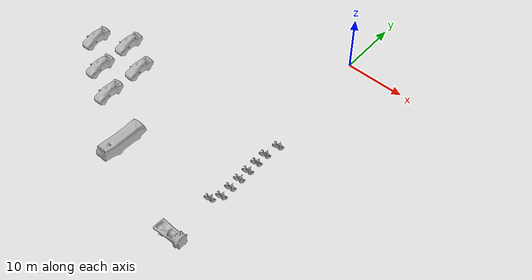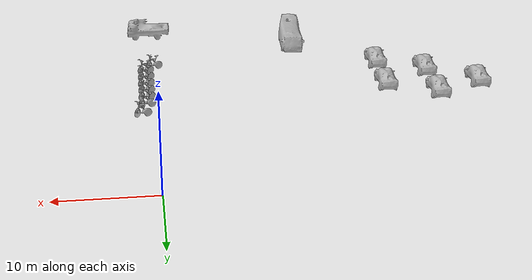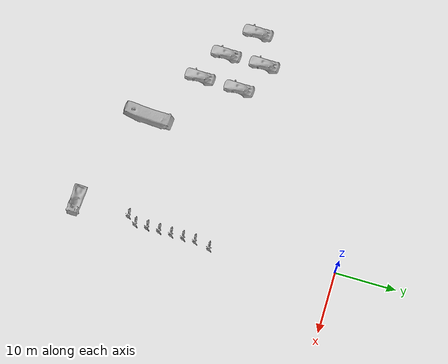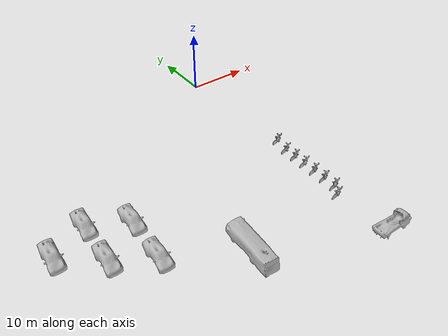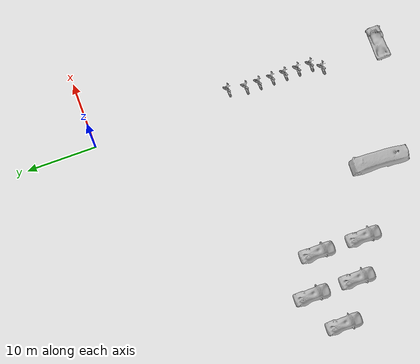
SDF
<sdf version="1.7">
 <world name="smoll_world">
  <model name="ground_plane">
   <static>1</static>
   <link name="link">
    <collision name="collision">
     <geometry><plane><normal>0 0 1</normal><size>100 100</size></plane></geometry>
     <surface><friction><ode><mu>100</mu><mu2>50</mu2></ode></friction></surface>
    </collision>
   </link>
  </model>
  <model name="kare-bus-2_clone_2">
   <model name="kare-bus">
    <static>1</static>
    <link name="link">
     <collision name="collision">
      <geometry><mesh><scale>8 8 8</scale><uri>model://kare-bus/meshes/kare-bus.obj</uri></mesh></geometry>
     </collision>
     <visual name="visual">
      <geometry><mesh><scale>8 8 8</scale><uri>model://kare-bus/meshes/kare-bus.obj</uri></mesh></geometry>
     </visual>
    </link>
    <pose>-3.3e-05 -0 -5e-06 1.57109 0.060055 1.57564</pose>
   </model>
   <static>0</static>
   <pose>-16 -36 2.05341 0 0 1.51931</pose>
  </model>
  <model name="kare-lorry3_clone_0">
   <model name="kare-lorry2">
    <model name="kare-emptylorry">
     <static>1</static>
     <link name="link">
      <collision name="collision">
       <geometry>
        <mesh>
         <scale>5 5 5</scale>
         <uri>/home/amadeus/model_editor_models/kare-emptylorry/meshes/kare-emptylorry.obj</uri>
        </mesh>
       </geometry>
      </collision>
      <visual name="visual">
       <geometry>
        <mesh>
         <scale>5 5 5</scale>
         <uri>/home/amadeus/model_editor_models/kare-emptylorry/meshes/kare-emptylorry.obj</uri>
        </mesh>
       </geometry>
      </visual>
     </link>
     <pose>-2.6e-05 -2.7e-05 -2e-06 1.55178 -0.050932 -1.58567</pose>
    </model>
    <static>0</static>
    <pose>2e-06 0 0.971266 0 -0 0</pose>
   </model>
   <static>1</static>
   <allow_auto_disable>0</allow_auto_disable>
   <plugin name="model_move" filename="/home/amadeus/Downloads/dev_ws/src/articubot_one/worlds/build/libmodel_move.so"/>
   <pose>0.478448 -43 0 0 0 0</pose>
  </model>
  <model name="kare-whitecar_clone_1">
   <static>1</static>
   <link name="roof_link">
    <pose>0 0 3 0 -0 0</pose>
    <self_collide>1</self_collide>
    <enable_wind>1</enable_wind>
    <kinematic>1</kinematic>
   </link>
   <link name="link">
    <collision name="collision">
     <geometry>
      <mesh>
       <scale>5 5 5</scale>
       <uri>/home/amadeus/model_editor_models/kare-whitecar/meshes/kare-whitecar.obj</uri>
      </mesh>
     </geometry>
    </collision>
    <visual name="visual">
     <geometry>
      <mesh>
       <scale>5 5 5</scale>
       <uri>/home/amadeus/model_editor_models/kare-whitecar/meshes/kare-whitecar.obj</uri>
      </mesh>
     </geometry>
    </visual>
   </link>
   <pose>-24.8609 -23.2845 1.09307 1.53975 -0 0</pose>
  </model>
  <model name="kare-whitecar_clone_2">
   <static>1</static>
   <link name="roof_link">
    <pose>0 0 3 0 -0 0</pose>
    <self_collide>1</self_collide>
    <enable_wind>1</enable_wind>
    <kinematic>1</kinematic>
   </link>
   <link name="link">
    <collision name="collision">
     <geometry>
      <mesh>
       <scale>5 5 5</scale>
       <uri>/home/amadeus/model_editor_models/kare-whitecar/meshes/kare-whitecar.obj</uri>
      </mesh>
     </geometry>
    </collision>
    <visual name="visual">
     <geometry>
      <mesh>
       <scale>5 5 5</scale>
       <uri>/home/amadeus/model_editor_models/kare-whitecar/meshes/kare-whitecar.obj</uri>
      </mesh>
     </geometry>
    </visual>
   </link>
   <pose>-25 -30 1.09307 1.53975 -0 0</pose>
  </model>
  <model name="kare-whitecar_clone_4">
   <static>1</static>
   <link name="roof_link">
    <pose>0 0 3 0 -0 0</pose>
    <self_collide>1</self_collide>
    <enable_wind>1</enable_wind>
    <kinematic>1</kinematic>
   </link>
   <link name="link">
    <collision name="collision">
     <geometry>
      <mesh>
       <scale>5 5 5</scale>
       <uri>/home/amadeus/model_editor_models/kare-whitecar/meshes/kare-whitecar.obj</uri>
      </mesh>
     </geometry>
    </collision>
    <visual name="visual">
     <geometry>
      <mesh>
       <scale>5 5 5</scale>
       <uri>/home/amadeus/model_editor_models/kare-whitecar/meshes/kare-whitecar.obj</uri>
      </mesh>
     </geometry>
    </visual>
   </link>
   <pose>-30 -20.4631 1.09307 1.53975 -0 0</pose>
  </model>
  <model name="kare-whitecar_clone_5">
   <static>1</static>
   <link name="roof_link">
    <pose>0 0 3 0 -0 0</pose>
    <self_collide>1</self_collide>
    <enable_wind>1</enable_wind>
    <kinematic>1</kinematic>
   </link>
   <link name="link">
    <collision name="collision">
     <geometry>
      <mesh>
       <scale>5 5 5</scale>
       <uri>/home/amadeus/model_editor_models/kare-whitecar/meshes/kare-whitecar.obj</uri>
      </mesh>
     </geometry>
    </collision>
    <visual name="visual">
     <geometry>
      <mesh>
       <scale>5 5 5</scale>
       <uri>/home/amadeus/model_editor_models/kare-whitecar/meshes/kare-whitecar.obj</uri>
      </mesh>
     </geometry>
    </visual>
   </link>
   <pose>-30 -27 1.09307 1.53975 -0 0</pose>
  </model>
  <model name="kare-whitecar_clone_7">
   <static>1</static>
   <link name="roof_link">
    <pose>0 0 3 0 -0 0</pose>
    <self_collide>1</self_collide>
    <enable_wind>1</enable_wind>
    <kinematic>1</kinematic>
   </link>
   <link name="link">
    <collision name="collision">
     <geometry>
      <mesh>
       <scale>5 5 5</scale>
       <uri>/home/amadeus/model_editor_models/kare-whitecar/meshes/kare-whitecar.obj</uri>
      </mesh>
     </geometry>
    </collision>
    <visual name="visual">
     <geometry>
      <mesh>
       <scale>5 5 5</scale>
       <uri>/home/amadeus/model_editor_models/kare-whitecar/meshes/kare-whitecar.obj</uri>
      </mesh>
     </geometry>
    </visual>
   </link>
   <pose>-35 -23 1.09307 1.53975 -0 0</pose>
  </model>
  <model name="kare-cycle2_clone_14">
   <model name="kare-cycle2">
    <model name="kare-cycle-2">
     <link name="link">
      <inertial>
       <mass>1</mass>
       <inertia><ixx>1</ixx><ixy>0</ixy><ixz>0</ixz><iyy>1</iyy><iyz>0</iyz><izz>1</izz></inertia>
      </inertial>
      <visual name="visual">
       <geometry><mesh><scale>2 2 2</scale><uri>model://kare-cycle/meshes/kare-cycle.obj</uri></mesh></geometry>
       <material><shader type="pixel"/></material>
      </visual>
      <collision name="collision">
       <geometry>
        <mesh><uri>/home/amadeus/model_editor_models/kare-cycle/meshes/kare-cycle.obj</uri><scale>2 2 2</scale></mesh>
       </geometry>
       <surface>
        <friction>
         <ode><mu>1</mu><mu2>1</mu2><fdir1>0 0 0</fdir1><slip1>0</slip1><slip2>0</slip2></ode>
         <torsional>
          <coefficient>1</coefficient>
          <patch_radius>0</patch_radius>
          <surface_radius>0</surface_radius>
          <use_patch_radius>1</use_patch_radius>
          <ode><slip>0</slip></ode>
         </torsional>
        </friction>
        <bounce><restitution_coefficient>0</restitution_coefficient><threshold>1e+06</threshold></bounce>
        <contact>
         <collide_without_contact>0</collide_without_contact>
         <collide_without_contact_bitmask>1</collide_without_contact_bitmask>
         <collide_bitmask>1</collide_bitmask>
         <ode>
          <soft_cfm>0</soft_cfm>
          <soft_erp>0.2</soft_erp>
          <kp>1e+13</kp>
          <kd>1</kd>
          <max_vel>0.01</max_vel>
          <min_depth>0</min_depth>
         </ode>
         <bullet>
          <split_impulse>1</split_impulse>
          <split_impulse_penetration_threshold>-0.01</split_impulse_penetration_threshold>
          <soft_cfm>0</soft_cfm>
          <soft_erp>0.2</soft_erp>
          <kp>1e+13</kp>
          <kd>1</kd>
         </bullet>
        </contact>
       </surface>
      </collision>
     </link>
     <static>1</static>
     <pose>4.5e-05 3e-06 6e-06 1.56443 -0.051805 1.69313</pose>
    </model>
    <static>0</static>
    <pose>9e-06 4e-06 -1e-06 0 -0 0</pose>
   </model>
   <static>0</static>
   <pose>1.49107 -20.4686 0 0 0 0</pose>
  </model>
  <model name="kare-cycle2_clone_15">
   <model name="kare-cycle2">
    <model name="kare-cycle-2">
     <link name="link">
      <inertial>
       <mass>1</mass>
       <inertia><ixx>1</ixx><ixy>0</ixy><ixz>0</ixz><iyy>1</iyy><iyz>0</iyz><izz>1</izz></inertia>
      </inertial>
      <visual name="visual">
       <geometry><mesh><scale>2 2 2</scale><uri>model://kare-cycle/meshes/kare-cycle.obj</uri></mesh></geometry>
       <material><shader type="pixel"/></material>
      </visual>
      <collision name="collision">
       <geometry>
        <mesh><uri>/home/amadeus/model_editor_models/kare-cycle/meshes/kare-cycle.obj</uri><scale>2 2 2</scale></mesh>
       </geometry>
       <surface>
        <friction>
         <ode><mu>1</mu><mu2>1</mu2><fdir1>0 0 0</fdir1><slip1>0</slip1><slip2>0</slip2></ode>
         <torsional>
          <coefficient>1</coefficient>
          <patch_radius>0</patch_radius>
          <surface_radius>0</surface_radius>
          <use_patch_radius>1</use_patch_radius>
          <ode><slip>0</slip></ode>
         </torsional>
        </friction>
        <bounce><restitution_coefficient>0</restitution_coefficient><threshold>1e+06</threshold></bounce>
        <contact>
         <collide_without_contact>0</collide_without_contact>
         <collide_without_contact_bitmask>1</collide_without_contact_bitmask>
         <collide_bitmask>1</collide_bitmask>
         <ode>
          <soft_cfm>0</soft_cfm>
          <soft_erp>0.2</soft_erp>
          <kp>1e+13</kp>
          <kd>1</kd>
          <max_vel>0.01</max_vel>
          <min_depth>0</min_depth>
         </ode>
         <bullet>
          <split_impulse>1</split_impulse>
          <split_impulse_penetration_threshold>-0.01</split_impulse_penetration_threshold>
          <soft_cfm>0</soft_cfm>
          <soft_erp>0.2</soft_erp>
          <kp>1e+13</kp>
          <kd>1</kd>
         </bullet>
        </contact>
       </surface>
      </collision>
     </link>
     <static>1</static>
     <pose>4.5e-05 3e-06 6e-06 1.56443 -0.051805 1.69313</pose>
    </model>
    <static>0</static>
    <pose>9e-06 4e-06 -1e-06 0 -0 0</pose>
   </model>
   <static>0</static>
   <pose>1 -23 0 0 0 0</pose>
  </model>
  <model name="kare-cycle2_clone_16">
   <model name="kare-cycle2">
    <model name="kare-cycle-2">
     <link name="link">
      <inertial>
       <mass>1</mass>
       <inertia><ixx>1</ixx><ixy>0</ixy><ixz>0</ixz><iyy>1</iyy><iyz>0</iyz><izz>1</izz></inertia>
      </inertial>
      <visual name="visual">
       <geometry><mesh><scale>2 2 2</scale><uri>model://kare-cycle/meshes/kare-cycle.obj</uri></mesh></geometry>
       <material><shader type="pixel"/></material>
      </visual>
      <collision name="collision">
       <geometry>
        <mesh><uri>/home/amadeus/model_editor_models/kare-cycle/meshes/kare-cycle.obj</uri><scale>2 2 2</scale></mesh>
       </geometry>
       <surface>
        <friction>
         <ode><mu>1</mu><mu2>1</mu2><fdir1>0 0 0</fdir1><slip1>0</slip1><slip2>0</slip2></ode>
         <torsional>
          <coefficient>1</coefficient>
          <patch_radius>0</patch_radius>
          <surface_radius>0</surface_radius>
          <use_patch_radius>1</use_patch_radius>
          <ode><slip>0</slip></ode>
         </torsional>
        </friction>
        <bounce><restitution_coefficient>0</restitution_coefficient><threshold>1e+06</threshold></bounce>
        <contact>
         <collide_without_contact>0</collide_without_contact>
         <collide_without_contact_bitmask>1</collide_without_contact_bitmask>
         <collide_bitmask>1</collide_bitmask>
         <ode>
          <soft_cfm>0</soft_cfm>
          <soft_erp>0.2</soft_erp>
          <kp>1e+13</kp>
          <kd>1</kd>
          <max_vel>0.01</max_vel>
          <min_depth>0</min_depth>
         </ode>
         <bullet>
          <split_impulse>1</split_impulse>
          <split_impulse_penetration_threshold>-0.01</split_impulse_penetration_threshold>
          <soft_cfm>0</soft_cfm>
          <soft_erp>0.2</soft_erp>
          <kp>1e+13</kp>
          <kd>1</kd>
         </bullet>
        </contact>
       </surface>
      </collision>
     </link>
     <static>1</static>
     <pose>4.5e-05 3e-06 6e-06 1.56443 -0.051805 1.69313</pose>
    </model>
    <static>0</static>
    <pose>9e-06 4e-06 -1e-06 0 -0 0</pose>
   </model>
   <static>0</static>
   <pose>1 -25 0 0 0 0</pose>
  </model>
  <model name="kare-cycle2_clone_17">
   <model name="kare-cycle2">
    <model name="kare-cycle-2">
     <link name="link">
      <inertial>
       <mass>1</mass>
       <inertia><ixx>1</ixx><ixy>0</ixy><ixz>0</ixz><iyy>1</iyy><iyz>0</iyz><izz>1</izz></inertia>
      </inertial>
      <visual name="visual">
       <geometry><mesh><scale>2 2 2</scale><uri>model://kare-cycle/meshes/kare-cycle.obj</uri></mesh></geometry>
       <material><shader type="pixel"/></material>
      </visual>
      <collision name="collision">
       <geometry>
        <mesh><uri>/home/amadeus/model_editor_models/kare-cycle/meshes/kare-cycle.obj</uri><scale>2 2 2</scale></mesh>
       </geometry>
       <surface>
        <friction>
         <ode><mu>1</mu><mu2>1</mu2><fdir1>0 0 0</fdir1><slip1>0</slip1><slip2>0</slip2></ode>
         <torsional>
          <coefficient>1</coefficient>
          <patch_radius>0</patch_radius>
          <surface_radius>0</surface_radius>
          <use_patch_radius>1</use_patch_radius>
          <ode><slip>0</slip></ode>
         </torsional>
        </friction>
        <bounce><restitution_coefficient>0</restitution_coefficient><threshold>1e+06</threshold></bounce>
        <contact>
         <collide_without_contact>0</collide_without_contact>
         <collide_without_contact_bitmask>1</collide_without_contact_bitmask>
         <collide_bitmask>1</collide_bitmask>
         <ode>
          <soft_cfm>0</soft_cfm>
          <soft_erp>0.2</soft_erp>
          <kp>1e+13</kp>
          <kd>1</kd>
          <max_vel>0.01</max_vel>
          <min_depth>0</min_depth>
         </ode>
         <bullet>
          <split_impulse>1</split_impulse>
          <split_impulse_penetration_threshold>-0.01</split_impulse_penetration_threshold>
          <soft_cfm>0</soft_cfm>
          <soft_erp>0.2</soft_erp>
          <kp>1e+13</kp>
          <kd>1</kd>
         </bullet>
        </contact>
       </surface>
      </collision>
     </link>
     <static>1</static>
     <pose>4.5e-05 3e-06 6e-06 1.56443 -0.051805 1.69313</pose>
    </model>
    <static>0</static>
    <pose>9e-06 4e-06 -1e-06 0 -0 0</pose>
   </model>
   <static>0</static>
   <pose>1 -27 0 0 0 0</pose>
  </model>
  <model name="kare-cycle2_clone_18">
   <model name="kare-cycle2">
    <model name="kare-cycle-2">
     <link name="link">
      <inertial>
       <mass>1</mass>
       <inertia><ixx>1</ixx><ixy>0</ixy><ixz>0</ixz><iyy>1</iyy><iyz>0</iyz><izz>1</izz></inertia>
      </inertial>
      <visual name="visual">
       <geometry><mesh><scale>2 2 2</scale><uri>model://kare-cycle/meshes/kare-cycle.obj</uri></mesh></geometry>
       <material><shader type="pixel"/></material>
      </visual>
      <collision name="collision">
       <geometry>
        <mesh><uri>/home/amadeus/model_editor_models/kare-cycle/meshes/kare-cycle.obj</uri><scale>2 2 2</scale></mesh>
       </geometry>
       <surface>
        <friction>
         <ode><mu>1</mu><mu2>1</mu2><fdir1>0 0 0</fdir1><slip1>0</slip1><slip2>0</slip2></ode>
         <torsional>
          <coefficient>1</coefficient>
          <patch_radius>0</patch_radius>
          <surface_radius>0</surface_radius>
          <use_patch_radius>1</use_patch_radius>
          <ode><slip>0</slip></ode>
         </torsional>
        </friction>
        <bounce><restitution_coefficient>0</restitution_coefficient><threshold>1e+06</threshold></bounce>
        <contact>
         <collide_without_contact>0</collide_without_contact>
         <collide_without_contact_bitmask>1</collide_without_contact_bitmask>
         <collide_bitmask>1</collide_bitmask>
         <ode>
          <soft_cfm>0</soft_cfm>
          <soft_erp>0.2</soft_erp>
          <kp>1e+13</kp>
          <kd>1</kd>
          <max_vel>0.01</max_vel>
          <min_depth>0</min_depth>
         </ode>
         <bullet>
          <split_impulse>1</split_impulse>
          <split_impulse_penetration_threshold>-0.01</split_impulse_penetration_threshold>
          <soft_cfm>0</soft_cfm>
          <soft_erp>0.2</soft_erp>
          <kp>1e+13</kp>
          <kd>1</kd>
         </bullet>
        </contact>
       </surface>
      </collision>
     </link>
     <static>1</static>
     <pose>4.5e-05 3e-06 6e-06 1.56443 -0.051805 1.69313</pose>
    </model>
    <static>0</static>
    <pose>9e-06 4e-06 -1e-06 0 -0 0</pose>
   </model>
   <static>0</static>
   <pose>1 -29 0 0 0 0</pose>
  </model>
  <model name="kare-cycle2_clone_19">
   <model name="kare-cycle2">
    <model name="kare-cycle-2">
     <link name="link">
      <inertial>
       <mass>1</mass>
       <inertia><ixx>1</ixx><ixy>0</ixy><ixz>0</ixz><iyy>1</iyy><iyz>0</iyz><izz>1</izz></inertia>
      </inertial>
      <visual name="visual">
       <geometry><mesh><scale>2 2 2</scale><uri>model://kare-cycle/meshes/kare-cycle.obj</uri></mesh></geometry>
       <material><shader type="pixel"/></material>
      </visual>
      <collision name="collision">
       <geometry>
        <mesh><uri>/home/amadeus/model_editor_models/kare-cycle/meshes/kare-cycle.obj</uri><scale>2 2 2</scale></mesh>
       </geometry>
       <surface>
        <friction>
         <ode><mu>1</mu><mu2>1</mu2><fdir1>0 0 0</fdir1><slip1>0</slip1><slip2>0</slip2></ode>
         <torsional>
          <coefficient>1</coefficient>
          <patch_radius>0</patch_radius>
          <surface_radius>0</surface_radius>
          <use_patch_radius>1</use_patch_radius>
          <ode><slip>0</slip></ode>
         </torsional>
        </friction>
        <bounce><restitution_coefficient>0</restitution_coefficient><threshold>1e+06</threshold></bounce>
        <contact>
         <collide_without_contact>0</collide_without_contact>
         <collide_without_contact_bitmask>1</collide_without_contact_bitmask>
         <collide_bitmask>1</collide_bitmask>
         <ode>
          <soft_cfm>0</soft_cfm>
          <soft_erp>0.2</soft_erp>
          <kp>1e+13</kp>
          <kd>1</kd>
          <max_vel>0.01</max_vel>
          <min_depth>0</min_depth>
         </ode>
         <bullet>
          <split_impulse>1</split_impulse>
          <split_impulse_penetration_threshold>-0.01</split_impulse_penetration_threshold>
          <soft_cfm>0</soft_cfm>
          <soft_erp>0.2</soft_erp>
          <kp>1e+13</kp>
          <kd>1</kd>
         </bullet>
        </contact>
       </surface>
      </collision>
     </link>
     <static>1</static>
     <pose>4.5e-05 3e-06 6e-06 1.56443 -0.051805 1.69313</pose>
    </model>
    <static>0</static>
    <pose>9e-06 4e-06 -1e-06 0 -0 0</pose>
   </model>
   <static>0</static>
   <pose>1 -31 0 0 0 0</pose>
  </model>
  <model name="kare-cycle2_clone_20">
   <model name="kare-cycle2">
    <model name="kare-cycle-2">
     <link name="link">
      <inertial>
       <mass>1</mass>
       <inertia><ixx>1</ixx><ixy>0</ixy><ixz>0</ixz><iyy>1</iyy><iyz>0</iyz><izz>1</izz></inertia>
      </inertial>
      <visual name="visual">
       <geometry><mesh><scale>2 2 2</scale><uri>model://kare-cycle/meshes/kare-cycle.obj</uri></mesh></geometry>
       <material><shader type="pixel"/></material>
      </visual>
      <collision name="collision">
       <geometry>
        <mesh><uri>/home/amadeus/model_editor_models/kare-cycle/meshes/kare-cycle.obj</uri><scale>2 2 2</scale></mesh>
       </geometry>
       <surface>
        <friction>
         <ode><mu>1</mu><mu2>1</mu2><fdir1>0 0 0</fdir1><slip1>0</slip1><slip2>0</slip2></ode>
         <torsional>
          <coefficient>1</coefficient>
          <patch_radius>0</patch_radius>
          <surface_radius>0</surface_radius>
          <use_patch_radius>1</use_patch_radius>
          <ode><slip>0</slip></ode>
         </torsional>
        </friction>
        <bounce><restitution_coefficient>0</restitution_coefficient><threshold>1e+06</threshold></bounce>
        <contact>
         <collide_without_contact>0</collide_without_contact>
         <collide_without_contact_bitmask>1</collide_without_contact_bitmask>
         <collide_bitmask>1</collide_bitmask>
         <ode>
          <soft_cfm>0</soft_cfm>
          <soft_erp>0.2</soft_erp>
          <kp>1e+13</kp>
          <kd>1</kd>
          <max_vel>0.01</max_vel>
          <min_depth>0</min_depth>
         </ode>
         <bullet>
          <split_impulse>1</split_impulse>
          <split_impulse_penetration_threshold>-0.01</split_impulse_penetration_threshold>
          <soft_cfm>0</soft_cfm>
          <soft_erp>0.2</soft_erp>
          <kp>1e+13</kp>
          <kd>1</kd>
         </bullet>
        </contact>
       </surface>
      </collision>
     </link>
     <static>1</static>
     <pose>4.5e-05 3e-06 6e-06 1.56443 -0.051805 1.69313</pose>
    </model>
    <static>0</static>
    <pose>9e-06 4e-06 -1e-06 0 -0 0</pose>
   </model>
   <static>0</static>
   <pose>1 -33 0 0 0 0</pose>
  </model>
  <model name="kare-cycle2_clone_21">
   <model name="kare-cycle2">
    <model name="kare-cycle-2">
     <link name="link">
      <inertial>
       <mass>1</mass>
       <inertia><ixx>1</ixx><ixy>0</ixy><ixz>0</ixz><iyy>1</iyy><iyz>0</iyz><izz>1</izz></inertia>
      </inertial>
      <visual name="visual">
       <geometry><mesh><scale>2 2 2</scale><uri>model://kare-cycle/meshes/kare-cycle.obj</uri></mesh></geometry>
       <material><shader type="pixel"/></material>
      </visual>
      <collision name="collision">
       <geometry>
        <mesh><uri>/home/amadeus/model_editor_models/kare-cycle/meshes/kare-cycle.obj</uri><scale>2 2 2</scale></mesh>
       </geometry>
       <surface>
        <friction>
         <ode><mu>1</mu><mu2>1</mu2><fdir1>0 0 0</fdir1><slip1>0</slip1><slip2>0</slip2></ode>
         <torsional>
          <coefficient>1</coefficient>
          <patch_radius>0</patch_radius>
          <surface_radius>0</surface_radius>
          <use_patch_radius>1</use_patch_radius>
          <ode><slip>0</slip></ode>
         </torsional>
        </friction>
        <bounce><restitution_coefficient>0</restitution_coefficient><threshold>1e+06</threshold></bounce>
        <contact>
         <collide_without_contact>0</collide_without_contact>
         <collide_without_contact_bitmask>1</collide_without_contact_bitmask>
         <collide_bitmask>1</collide_bitmask>
         <ode>
          <soft_cfm>0</soft_cfm>
          <soft_erp>0.2</soft_erp>
          <kp>1e+13</kp>
          <kd>1</kd>
          <max_vel>0.01</max_vel>
          <min_depth>0</min_depth>
         </ode>
         <bullet>
          <split_impulse>1</split_impulse>
          <split_impulse_penetration_threshold>-0.01</split_impulse_penetration_threshold>
          <soft_cfm>0</soft_cfm>
          <soft_erp>0.2</soft_erp>
          <kp>1e+13</kp>
          <kd>1</kd>
         </bullet>
        </contact>
       </surface>
      </collision>
     </link>
     <static>1</static>
     <pose>4.5e-05 3e-06 6e-06 1.56443 -0.051805 1.69313</pose>
    </model>
    <static>0</static>
    <pose>9e-06 4e-06 -1e-06 0 -0 0</pose>
   </model>
   <static>0</static>
   <pose>0 -34.4178 0 0 0 0</pose>
  </model>
 </world>
</sdf>
